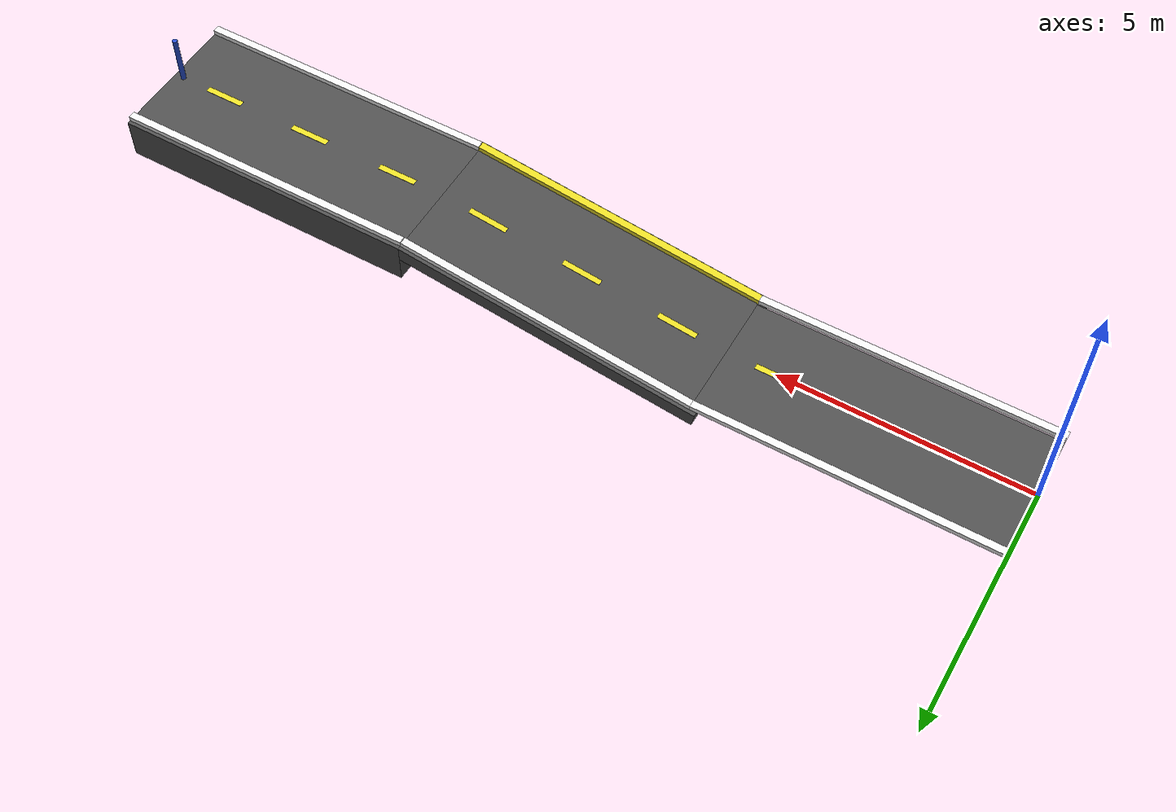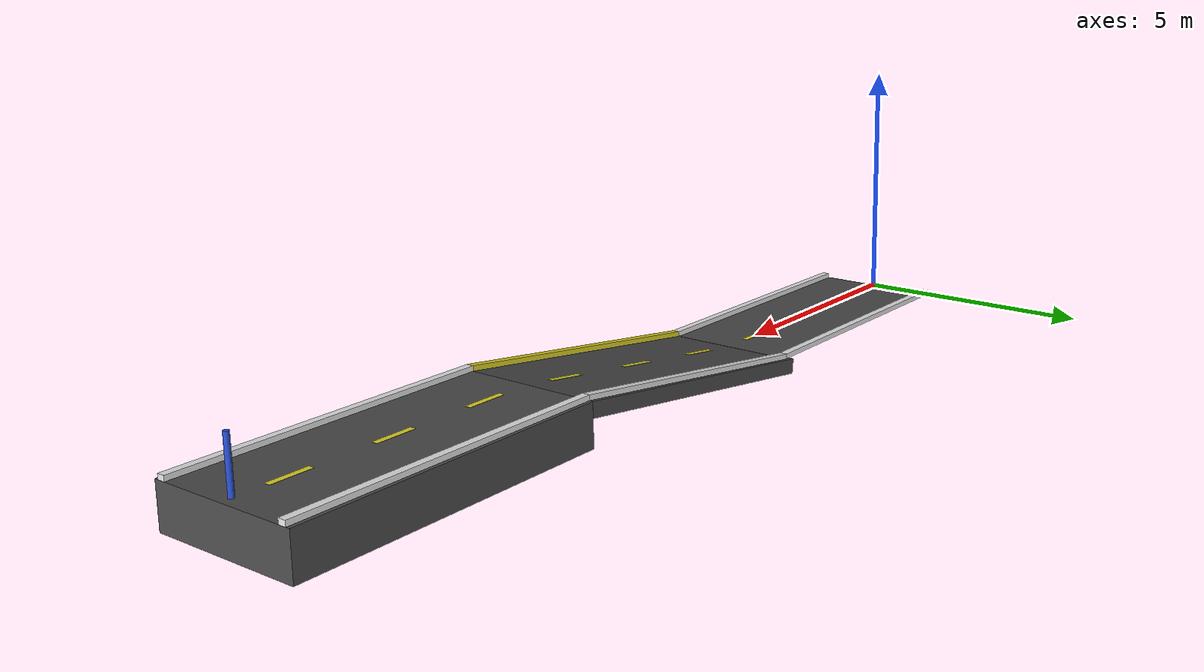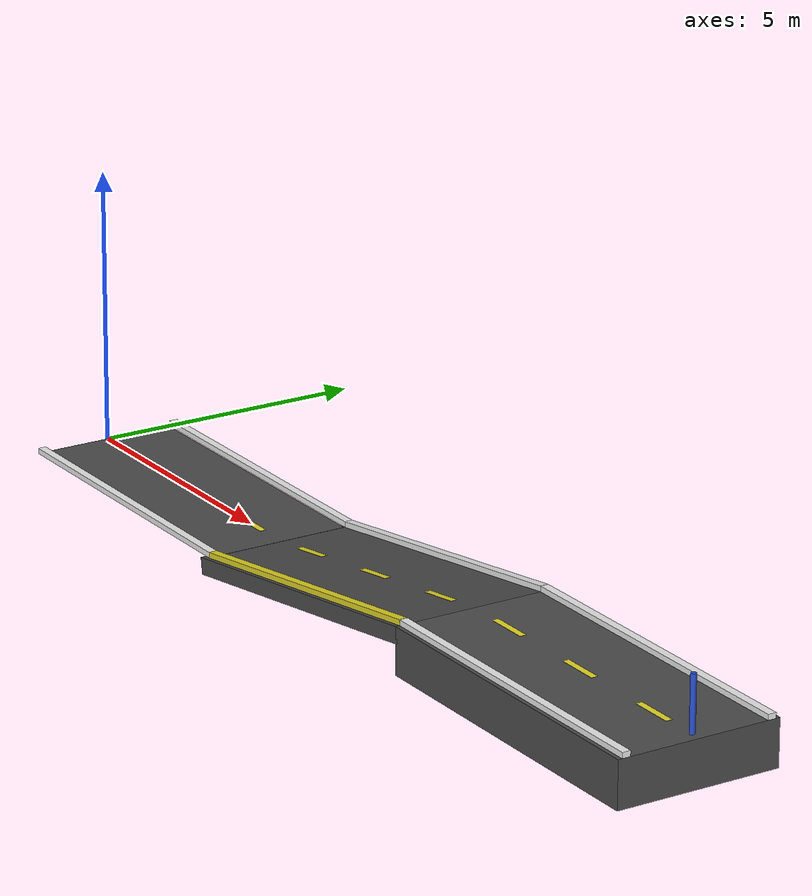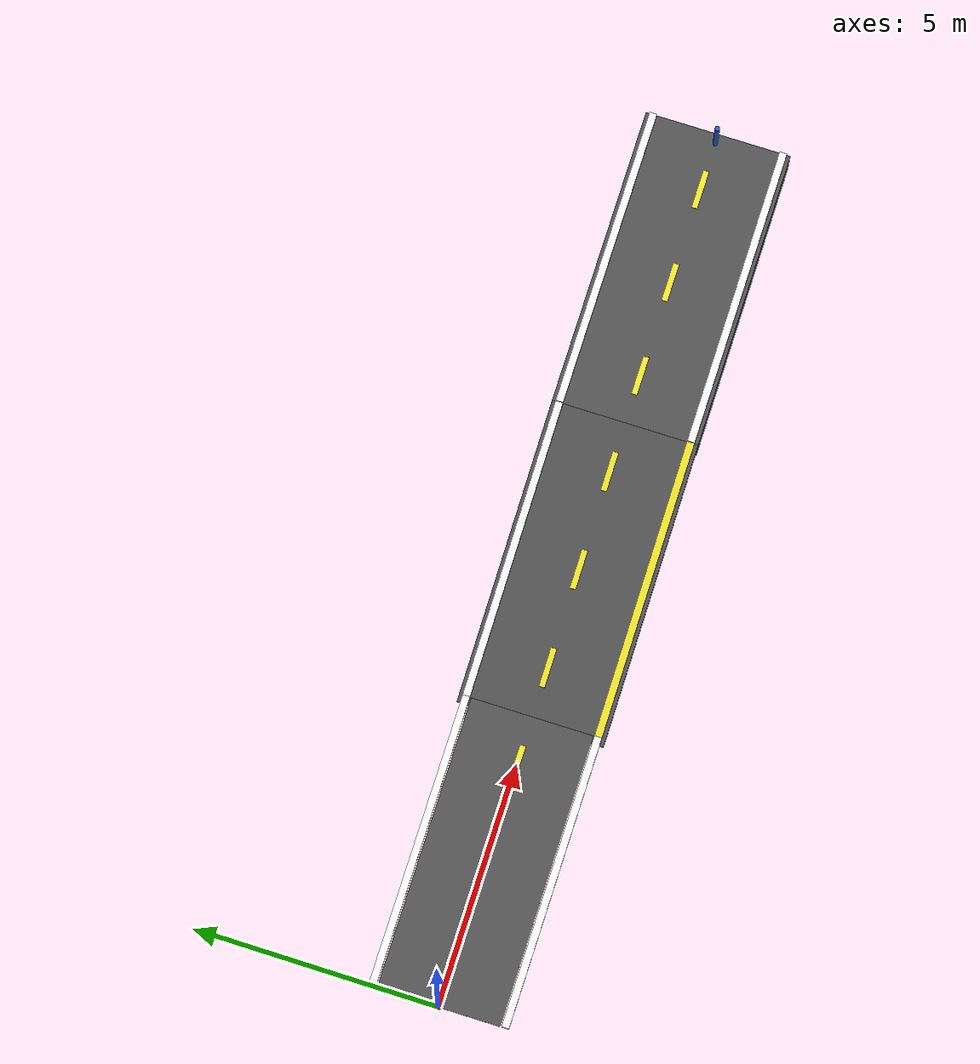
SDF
<?xml version="1.0"?>
<sdf version="1.6">
  <world name="road_slope_world">

    <include><uri>model://sun</uri></include>

    <!-- ============== CONTINUOUS ROAD COLLISION (single body) ============= -->
    <model name="road_collision">
      <static>true</static>
      <link name="link">
        <pose>0 1.5 0 1.5707963 0 0</pose>
        <collision name="collision">
          <geometry>
            <polyline>
              <point>0 -0.5</point>
              <point>18.2 -0.5</point>
              <point>18.2 0.843245</point>
              <point>12.2 0.843245</point>
              <point>12.1 0.84149</point>
              <point>12.0 0.83623</point>
              <point>11.9 0.82745</point>
              <point>11.8 0.81515</point>
              <point>6.2 0.02810</point>
              <point>6.1 0.01580</point>
              <point>6.0 0.00702</point>
              <point>5.9 0.00176</point>
              <point>5.8 0</point>
              <point>0 0</point>
              <height>3.0</height>
            </polyline>
          </geometry>
          <surface>
            <friction><ode><mu>100.0</mu><mu2>100.0</mu2></ode></friction>
            <contact><ode><kp>1e6</kp><kd>1.0</kd><min_depth>0.001</min_depth></ode></contact>
          </surface>
        </collision>
      </link>
    </model>

    <physics type="ode">
      <max_step_size>0.001</max_step_size>
      <real_time_factor>1.0</real_time_factor>
      <real_time_update_rate>1000</real_time_update_rate>
    </physics>

    <!-- ================= FLAT SECTION VISUALS (x 0-6) ================= -->
    <model name="road_flat">
      <static>true</static>
      <link name="link">
        <visual name="surface">
          <pose>3.0 0 0.002 0 0 0</pose>
          <geometry><box><size>6.0 2.5 0.004</size></box></geometry>
          <material><script><name>Gazebo/DarkGrey</name></script></material>
        </visual>
        <visual name="kerb_left">
          <pose>3.0 1.35 0.05 0 0 0</pose>
          <geometry><box><size>6.0 0.15 0.10</size></box></geometry>
          <material><script><name>Gazebo/White</name></script></material>
        </visual>
        <visual name="kerb_right">
          <pose>3.0 -1.35 0.05 0 0 0</pose>
          <geometry><box><size>6.0 0.15 0.10</size></box></geometry>
          <material><script><name>Gazebo/White</name></script></material>
        </visual>
        <visual name="dash_1">
          <pose>1.0 0 0.005 0 0 0</pose>
          <geometry><box><size>0.8 0.12 0.004</size></box></geometry>
          <material><script><name>Gazebo/Yellow</name></script></material>
        </visual>
        <visual name="dash_2">
          <pose>3.0 0 0.005 0 0 0</pose>
          <geometry><box><size>0.8 0.12 0.004</size></box></geometry>
          <material><script><name>Gazebo/Yellow</name></script></material>
        </visual>
        <visual name="dash_3">
          <pose>5.0 0 0.005 0 0 0</pose>
          <geometry><box><size>0.8 0.12 0.004</size></box></geometry>
          <material><script><name>Gazebo/Yellow</name></script></material>
        </visual>
      </link>
    </model>

    <!-- ================= RAMP (x 6-12, 8 deg, COLLIDABLE) ============= -->
    <model name="ramp">
      <static>true</static>
      <link name="link">
        <!-- collision now provided by the continuous road_collision body -->
        <visual name="visual">
          <pose>8.946606 0 0.262644 0 -0.139626 0</pose>
          <geometry><box><size>6.208965 3.0 0.30</size></box></geometry>
          <material><script><name>Gazebo/DarkGrey</name></script></material>
        </visual>
        <!-- kerbs riding on the ramp surface (visual only) -->
        <visual name="kerb_left">
          <pose>8.993041 1.35 0.471136 0 -0.139626 0</pose>
          <geometry><box><size>6.06 0.15 0.10</size></box></geometry>
          <material><script><name>Gazebo/White</name></script></material>
        </visual>
        <visual name="kerb_right">
          <pose>8.993041 -1.35 0.471136 0 -0.139626 0</pose>
          <geometry><box><size>6.06 0.15 0.10</size></box></geometry>
          <material><script><name>Gazebo/Yellow</name></script></material>
        </visual>
        <!-- centre dashes on the slope (visual only) -->
        <visual name="dash_1">
          <pose>7.0 0 0.1445 0 -0.139626 0</pose>
          <geometry><box><size>0.8 0.12 0.004</size></box></geometry>
          <material><script><name>Gazebo/Yellow</name></script></material>
        </visual>
        <visual name="dash_2">
          <pose>9.0 0 0.4256 0 -0.139626 0</pose>
          <geometry><box><size>0.8 0.12 0.004</size></box></geometry>
          <material><script><name>Gazebo/Yellow</name></script></material>
        </visual>
        <visual name="dash_3">
          <pose>11.0 0 0.7067 0 -0.139626 0</pose>
          <geometry><box><size>0.8 0.12 0.004</size></box></geometry>
          <material><script><name>Gazebo/Yellow</name></script></material>
        </visual>
      </link>
    </model>

    <!-- ================= PLATEAU (x 12-18.2, COLLIDABLE) =============== -->
    <model name="plateau">
      <static>true</static>
      <link name="link">
        <!-- collision now provided by the continuous road_collision body -->
        <visual name="visual">
          <pose>15.1 0 0.421623 0 0 0</pose>
          <geometry><box><size>6.2 3.0 0.843245</size></box></geometry>
          <material><script><name>Gazebo/DarkGrey</name></script></material>
        </visual>
        <visual name="kerb_left">
          <pose>15.1 1.35 0.893245 0 0 0</pose>
          <geometry><box><size>6.2 0.15 0.10</size></box></geometry>
          <material><script><name>Gazebo/White</name></script></material>
        </visual>
        <visual name="kerb_right">
          <pose>15.1 -1.35 0.893245 0 0 0</pose>
          <geometry><box><size>6.2 0.15 0.10</size></box></geometry>
          <material><script><name>Gazebo/White</name></script></material>
        </visual>
        <visual name="dash_1">
          <pose>13.0 0 0.846245 0 0 0</pose>
          <geometry><box><size>0.8 0.12 0.004</size></box></geometry>
          <material><script><name>Gazebo/Yellow</name></script></material>
        </visual>
        <visual name="dash_2">
          <pose>15.0 0 0.846245 0 0 0</pose>
          <geometry><box><size>0.8 0.12 0.004</size></box></geometry>
          <material><script><name>Gazebo/Yellow</name></script></material>
        </visual>
        <visual name="dash_3">
          <pose>17.0 0 0.846245 0 0 0</pose>
          <geometry><box><size>0.8 0.12 0.004</size></box></geometry>
          <material><script><name>Gazebo/Yellow</name></script></material>
        </visual>
      </link>
    </model>

    <!-- ================= START / END POSTS (visual only) =============== -->
    <model name="start_post">
      <static>true</static>
      <link name="link">
        <visual name="visual">
          <pose>0 0 0.5 0 0 0</pose>
          <geometry><cylinder><radius>0.05</radius><length>1.0</length></cylinder></geometry>
          <material><script><name>Gazebo/Red</name></script></material>
        </visual>
      </link>
    </model>

    <model name="end_post">
      <static>true</static>
      <link name="link">
        <visual name="visual">
          <pose>18.0 0 1.343245 0 0 0</pose>
          <geometry><cylinder><radius>0.05</radius><length>1.0</length></cylinder></geometry>
          <material><script><name>Gazebo/Blue</name></script></material>
        </visual>
      </link>
    </model>

  </world>
</sdf>
